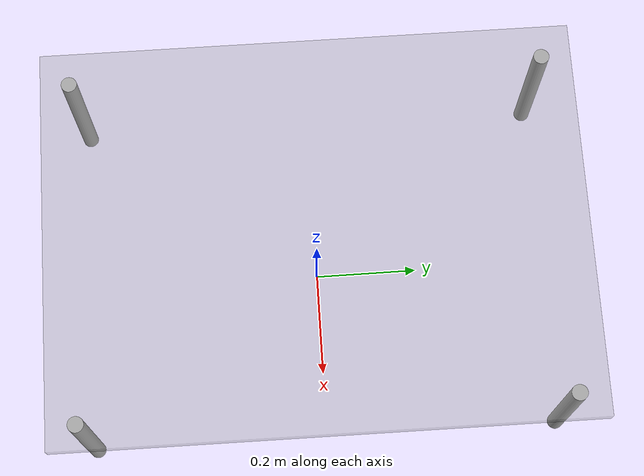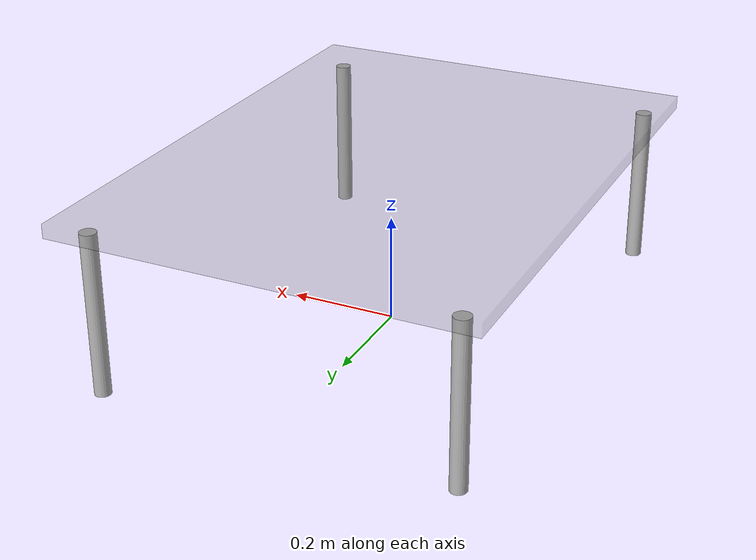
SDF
<?xml version='1.0'?>
<sdf version='1.7'>
  <model name='glass_table'>
    <link name='base_link'>
      <inertial>
        <mass>1</mass>
        <inertia>
          <ixx>0.166667</ixx>
          <ixy>0</ixy>
          <ixz>0</ixz>
          <iyy>0.166667</iyy>
          <iyz>0</iyz>
          <izz>0.166667</izz>
        </inertia>
        <pose>0 0 0 0 -0 0</pose>
      </inertial>
      <pose>0 0 0 0 -0 0</pose>
      <visual name='visual'>
        <pose>0 0 0.3125 0 -0 0</pose>
        <geometry>
          <box>
            <size>0.75 1 0.025</size>
          </box>
        </geometry>
        <material>
          <diffuse>0.5 0.5 0.5 0.3</diffuse>
        </material>
      </visual>
      <collision name='collision'>
        <pose>0 0 0.3125 0 -0 0</pose>
        <geometry>
          <box>
            <size>0.75 1 0.025</size>
          </box>
        </geometry>
      </collision>
    </link>
    <link name='leg1'>
      <inertial>
        <mass>1</mass>
        <inertia>
          <ixx>0.145833</ixx>
          <ixy>0</ixy>
          <ixz>0</ixz>
          <iyy>0.145833</iyy>
          <iyz>0</iyz>
          <izz>0.125</izz>
        </inertia>
        <pose>0 0 0 0 -0 0</pose>
      </inertial>
      <pose>0.325 0.45 0.15 0 -0 0</pose>
      <visual name='visual'>
        <pose>0 0 0 0 -0 0</pose>
        <geometry>
          <cylinder>
            <radius>0.015</radius>
            <length>0.3</length>
          </cylinder>
        </geometry>
        <material>
          <diffuse>0.7 0.7 0.7 1</diffuse>
        </material>
      </visual>
    </link>
    <link name='leg2'>
      <inertial>
        <mass>1</mass>
        <inertia>
          <ixx>0.145833</ixx>
          <ixy>0</ixy>
          <ixz>0</ixz>
          <iyy>0.145833</iyy>
          <iyz>0</iyz>
          <izz>0.125</izz>
        </inertia>
        <pose>0 0 0 0 -0 0</pose>
      </inertial>
      <pose>0.325 -0.45 0.15 0 -0 0</pose>
      <visual name='visual'>
        <pose>0 0 0 0 -0 0</pose>
        <geometry>
          <cylinder>
            <radius>0.015</radius>
            <length>0.3</length>
          </cylinder>
        </geometry>
        <material>
          <diffuse>0.7 0.7 0.7 1</diffuse>
        </material>
      </visual>
    </link>
    <link name='leg3'>
      <inertial>
        <mass>1</mass>
        <inertia>
          <ixx>0.145833</ixx>
          <ixy>0</ixy>
          <ixz>0</ixz>
          <iyy>0.145833</iyy>
          <iyz>0</iyz>
          <izz>0.125</izz>
        </inertia>
        <pose>0 0 0 0 -0 0</pose>
      </inertial>
      <pose>-0.325 -0.45 0.15 0 -0 0</pose>
      <gravity>1</gravity>
      <self_collide>0</self_collide>
      <kinematic>0</kinematic>
      <enable_wind>0</enable_wind>
      <visual name='visual'>
        <pose>0 0 0 0 -0 0</pose>
        <geometry>
          <cylinder>
            <radius>0.015</radius>
            <length>0.3</length>
          </cylinder>
        </geometry>
        <material>
          <diffuse>0.7 0.7 0.7 1</diffuse>
        </material>
        <transparency>0</transparency>
        <cast_shadows>1</cast_shadows>
      </visual>
    </link>
    <link name='leg4'>
      <inertial>
        <mass>1</mass>
        <inertia>
          <ixx>0.145833</ixx>
          <ixy>0</ixy>
          <ixz>0</ixz>
          <iyy>0.145833</iyy>
          <iyz>0</iyz>
          <izz>0.125</izz>
        </inertia>
        <pose>0 0 0 0 -0 0</pose>
      </inertial>
      <pose>-0.325 0.45 0.15 0 -0 0</pose>
      <visual name='visual'>
        <pose>0 0 0 0 -0 0</pose>
        <geometry>
          <cylinder>
            <radius>0.015</radius>
            <length>0.3</length>
          </cylinder>
        </geometry>
        <material>
          <diffuse>0.7 0.7 0.7 1</diffuse>
        </material>
        <transparency>0</transparency>
        <cast_shadows>1</cast_shadows>
      </visual>
    </link>
    <joint name='link_0_JOINT_0' type='fixed'>
      <parent>base_link</parent>
      <child>leg1</child>
      <pose>0 0 0 0 -0 0</pose>
    </joint>
    <joint name='link_0_JOINT_1' type='fixed'>
      <parent>base_link</parent>
      <child>leg2</child>
      <pose>0 0 0 0 -0 0</pose>
    </joint>
    <joint name='link_0_JOINT_2' type='fixed'>
      <parent>base_link</parent>
      <child>leg3</child>
      <pose>0 0 0 0 -0 0</pose>
    </joint>
    <joint name='link_0_JOINT_3' type='fixed'>
      <parent>base_link</parent>
      <child>leg4</child>
      <pose>0 0 0 0 -0 0</pose>
    </joint>
  </model>
</sdf>
